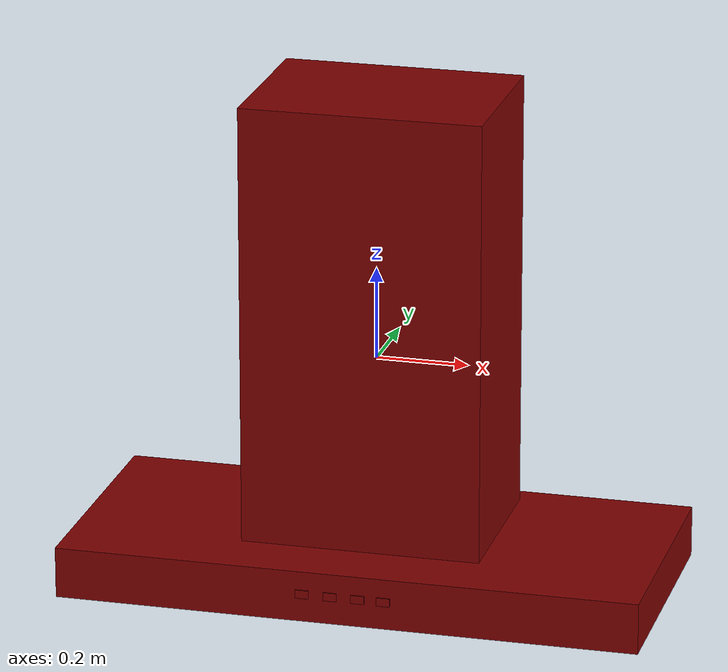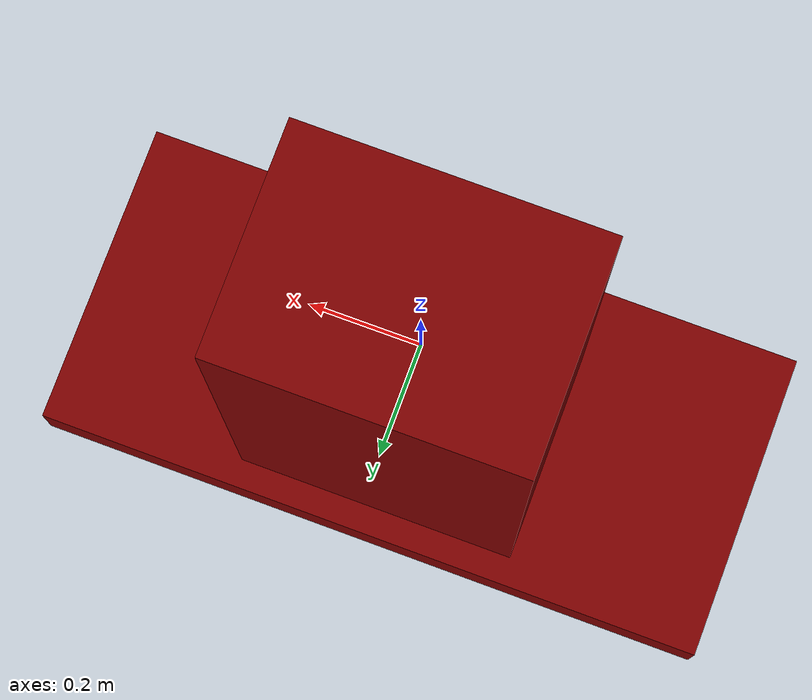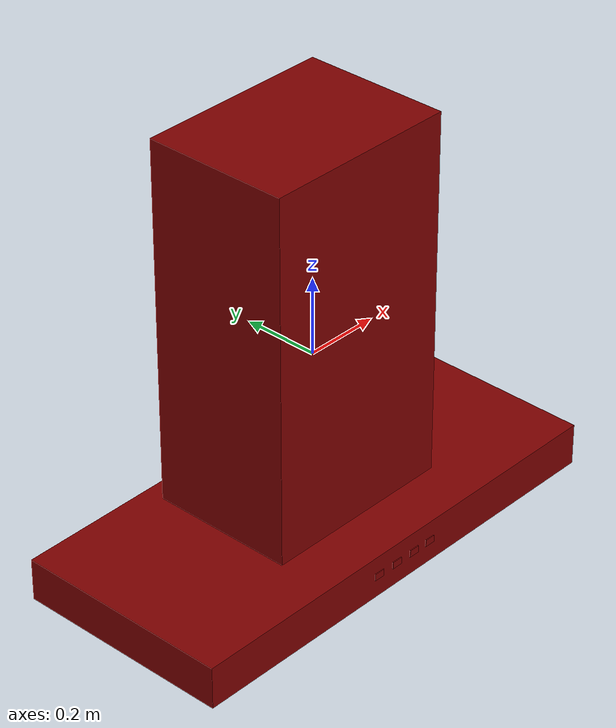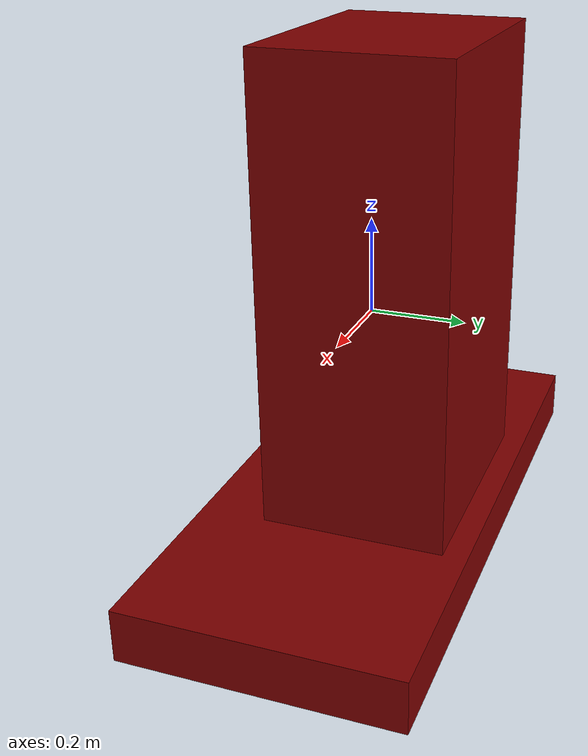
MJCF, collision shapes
<?xml version='1.0' encoding='UTF-8'?>
<mujoco model="model">
  <compiler angle="radian"/>
  <asset>
    <mesh file="visuals/Body001.obj" name="Body001_vis"/>
    <mesh file="visuals/Button001.obj" name="Button001_vis"/>
    <mesh file="visuals/Button002.obj" name="Button002_vis"/>
    <mesh file="visuals/Button003.obj" name="Button003_vis"/>
    <mesh file="visuals/Button004.obj" name="Button004_vis"/>
    <texture file="visuals/T_BC001.png" name="Body001_material" type="2d"/>
    <material name="Body001_material" rgba="1 1 1 1.0" texture="Body001_material" shininess="0.5" specular="0.3103448502657381"/>
    <texture file="visuals/T_BC001.png" name="Button001_material" type="2d"/>
    <material name="Button001_material" rgba="1 1 1 1.0" texture="Button001_material" shininess="1" specular="1"/>
    <texture file="visuals/T_BC001.png" name="Button002_material" type="2d"/>
    <material name="Button002_material" rgba="1 1 1 1.0" texture="Button002_material" shininess="1" specular="1"/>
    <texture file="visuals/T_BC001.png" name="Button003_material" type="2d"/>
    <material name="Button003_material" rgba="1 1 1 1.0" texture="Button003_material" shininess="1" specular="1"/>
    <texture file="visuals/T_BC001.png" name="Button004_material" type="2d"/>
    <material name="Button004_material" rgba="1 1 1 1.0" texture="Button004_material" shininess="1" specular="1"/>
  </asset>
  <default>
    <default class="visual">
      <geom conaffinity="0" contype="0" group="1" type="mesh"/>
    </default>
    <default class="collision">
      <geom group="0" rgba="0.5 0 0 0.5"/>
    </default>
    <default class="spawn">
      <geom group="0" rgba="1 1 1 0.5" contype="0" conaffinity="0"/>
      <site group="0" rgba="1 1 1 0.5"/>
    </default>
    <default class="region">
      <geom group="1" conaffinity="0" contype="0" rgba="0 1 0 0"/>
    </default>
  </default>
  <worldbody>
    <body>
      <body name="object">
        <geom mesh="Body001_vis" type="mesh" solimp="0.998 0.998 0.001" solref="0.001 1" density="100" friction="0.95 0.3 0.1" class="visual" material="Body001_material"/>
        <geom class="collision" type="box" pos="0.000023 0.047534 0.092134" size="0.26016223430633545 0.19210360944271088 0.48201823234558105" quat="1.0 0.0 0.0 0.0"/>
        <geom class="collision" type="box" pos="0.000285 0.002978 -0.443030" size="0.6322161555290222 0.28740230202674866 0.05569906532764435" quat="1.0 0.0 0.0 0.0"/>
        <geom class="collision" type="cylinder" pos="0.004239 0.008686 -0.533956" size="0.09605326503515244 0.04025108367204666" quat="1.0 0.0 0.0 0.0"/>
        <body name="Button001">
          <joint axis="0.0 1.0 0.0" pos="0.088490 -0.288131 -0.436143" limited="true" name="Button001_joint" range="0.0 0.002" type="slide" damping="1" frictionloss="1" armature=".01" stiffness="0.05"/>
          <geom mesh="Button001_vis" type="mesh" solimp="0.998 0.998 0.001" solref="0.001 1" density="100" friction="0.95 0.3 0.1" class="visual" material="Button001_material"/>
          <geom class="collision" type="box" pos="0.088386 -0.288997 -0.436067" size="0.014453431591391563 0.0012359945103526115 0.009122757241129875" quat="1.0 0.0 0.0 0.0"/>
        </body>
        <body name="Button002">
          <joint axis="0.0 1.0 0.0" pos="0.032932 -0.288131 -0.436143" limited="true" name="Button002_joint" range="0.0 0.002" type="slide" damping="1" frictionloss="1" armature=".01" stiffness="0.05"/>
          <geom mesh="Button002_vis" type="mesh" solimp="0.998 0.998 0.001" solref="0.001 1" density="100" friction="0.95 0.3 0.1" class="visual" material="Button002_material"/>
          <geom class="collision" type="box" pos="0.033022 -0.288997 -0.436067" size="0.014453431591391563 0.0012359945103526115 0.009122757241129875" quat="1.0 0.0 0.0 0.0"/>
        </body>
        <body name="Button003">
          <joint axis="0.0 1.0 0.0" pos="-0.026703 -0.288131 -0.436143" limited="true" name="Button003_joint" range="0.0 0.002" type="slide" damping="1" frictionloss="1" armature=".01" stiffness="0.05"/>
          <geom mesh="Button003_vis" type="mesh" solimp="0.998 0.998 0.001" solref="0.001 1" density="100" friction="0.95 0.3 0.1" class="visual" material="Button003_material"/>
          <geom class="collision" type="box" pos="-0.027105 -0.288997 -0.436067" size="0.014453431591391563 0.0012359945103526115 0.009122757241129875" quat="1.0 0.0 0.0 0.0"/>
        </body>
        <body name="Button004">
          <joint axis="0.0 1.0 0.0" pos="-0.087733 -0.288131 -0.436143" limited="true" name="Button004_joint" range="0.0 0.002" type="slide" damping="1" frictionloss="1" armature=".01" stiffness="0.05"/>
          <geom mesh="Button004_vis" type="mesh" solimp="0.998 0.998 0.001" solref="0.001 1" density="100" friction="0.95 0.3 0.1" class="visual" material="Button004_material"/>
          <geom class="collision" type="box" pos="-0.088112 -0.288997 -0.436067" size="0.014453431591391563 0.0012359945103526115 0.009122757241129875" quat="1.0 0.0 0.0 0.0"/>
        </body>
        <geom class="region" name="reg_main" type="box" pos="0.0 -0.0001784999999999981 0.0" size="0.63201 0.2902355 0.57283"/>
      </body>
    </body>
  </worldbody>
  <actuator>
    <motor name="Button001_joint_actuator" joint="Button001_joint" gear="0.1"/>
    <motor name="Button002_joint_actuator" joint="Button002_joint" gear="0.1"/>
    <motor name="Button003_joint_actuator" joint="Button003_joint" gear="0.1"/>
    <motor name="Button004_joint_actuator" joint="Button004_joint" gear="0.1"/>
  </actuator>
</mujoco>
